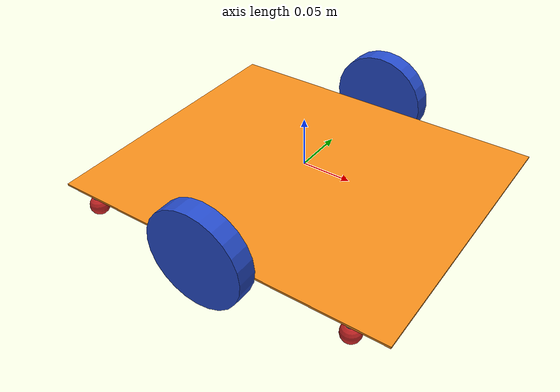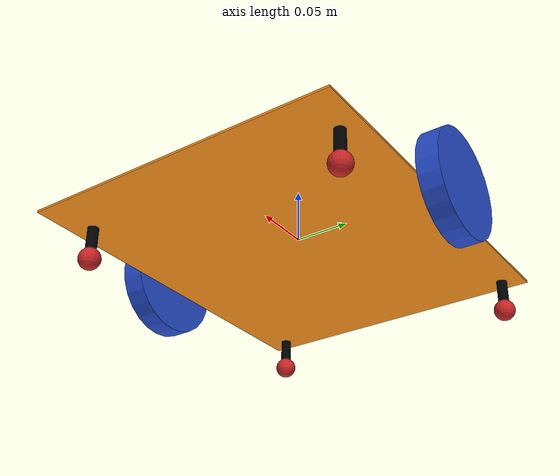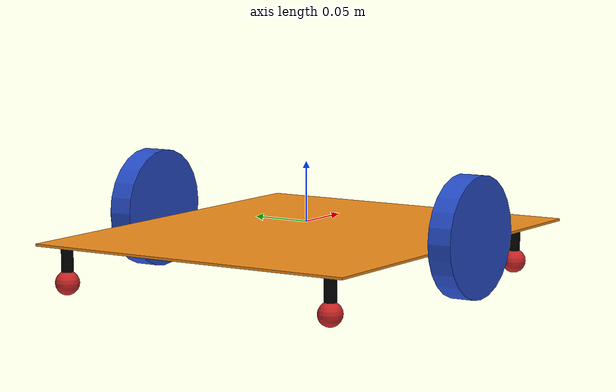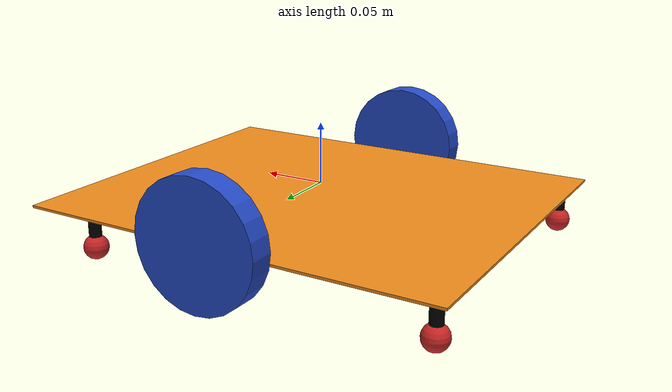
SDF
<sdf version='1.9'>
  <model name='gdgu_robot'>
    <link name='base_link'>
      <inertial>
        <pose>-0.007021276595744697 0 -0.015 0 0 0</pose>
        <mass>0.93999999999999995</mass>
        <inertia>
          <ixx>0.01045256666666667</ixx>
          <ixy>0</ixy>
          <ixz>-4.4999999999999739e-05</ixz>
          <iyy>0.01448122624113476</iyy>
          <iyz>0</iyz>
          <izz>0.024793592907801431</izz>
        </inertia>
      </inertial>
      <collision name='base_link_fixed_joint_lump__chassis_link_collision'>
        <pose>0 0 -0.009000000000000001 0 0 0</pose>
        <geometry>
          <box>
            <size>0.35 0.29 0.002</size>
          </box>
        </geometry>
        <surface>
          <contact>
            <ode/>
          </contact>
          <friction>
            <ode/>
          </friction>
        </surface>
      </collision>
      <collision name='base_link_fixed_joint_lump__caster_wheel1_link_collision_1'>
        <pose>-0.16 0.125 -0.04 0 0 0</pose>
        <geometry>
          <sphere>
            <radius>0.01</radius>
          </sphere>
        </geometry>
        <surface>
          <contact>
            <ode/>
          </contact>
          <friction>
            <ode>
              <mu>0.001</mu>
              <mu2>0.001</mu2>
            </ode>
          </friction>
        </surface>
      </collision>
      <collision name='base_link_fixed_joint_lump__connector_cw1_link_collision_2'>
        <pose>-0.16 0.125 -0.02 0 0 0</pose>
        <geometry>
          <cylinder>
            <length>0.021999999999999999</length>
            <radius>0.0050000000000000001</radius>
          </cylinder>
        </geometry>
      </collision>
      <collision name='base_link_fixed_joint_lump__caster_wheel2_link_collision_3'>
        <pose>-0.16 -0.125 -0.04 0 0 0</pose>
        <geometry>
          <sphere>
            <radius>0.01</radius>
          </sphere>
        </geometry>
        <surface>
          <contact>
            <ode/>
          </contact>
          <friction>
            <ode>
              <mu>0.001</mu>
              <mu2>0.001</mu2>
            </ode>
          </friction>
        </surface>
      </collision>
      <collision name='base_link_fixed_joint_lump__connector_cw2_link_collision_4'>
        <pose>-0.16 -0.125 -0.02 0 0 0</pose>
        <geometry>
          <cylinder>
            <length>0.021999999999999999</length>
            <radius>0.0050000000000000001</radius>
          </cylinder>
        </geometry>
      </collision>
      <collision name='base_link_fixed_joint_lump__caster_wheel3_link_collision_5'>
        <pose>0.13 0.125 -0.04 0 0 0</pose>
        <geometry>
          <sphere>
            <radius>0.01</radius>
          </sphere>
        </geometry>
        <surface>
          <contact>
            <ode/>
          </contact>
          <friction>
            <ode>
              <mu>0.001</mu>
              <mu2>0.001</mu2>
            </ode>
          </friction>
        </surface>
      </collision>
      <collision name='base_link_fixed_joint_lump__connector_cw3_link_collision_6'>
        <pose>0.13 0.125 -0.02 0 0 0</pose>
        <geometry>
          <cylinder>
            <length>0.021999999999999999</length>
            <radius>0.0050000000000000001</radius>
          </cylinder>
        </geometry>
      </collision>
      <collision name='base_link_fixed_joint_lump__caster_wheel4_link_collision_7'>
        <pose>0.13 -0.125 -0.04 0 0 0</pose>
        <geometry>
          <sphere>
            <radius>0.01</radius>
          </sphere>
        </geometry>
        <surface>
          <contact>
            <ode/>
          </contact>
          <friction>
            <ode>
              <mu>0.001</mu>
              <mu2>0.001</mu2>
            </ode>
          </friction>
        </surface>
      </collision>
      <collision name='base_link_fixed_joint_lump__connector_cw4_link_collision_8'>
        <pose>0.13 -0.125 -0.02 0 0 0</pose>
        <geometry>
          <cylinder>
            <length>0.021999999999999999</length>
            <radius>0.0050000000000000001</radius>
          </cylinder>
        </geometry>
      </collision>
      <visual name='base_link_fixed_joint_lump__chassis_link_visual'>
        <pose>0 0 -0.009000000000000001 0 0 0</pose>
        <geometry>
          <box>
            <size>0.35 0.29 0.002</size>
          </box>
        </geometry>
        <material>
          <script>
            <name>Gazebo/Orange</name>
            <uri>file://media/materials/scripts/gazebo.material</uri>
          </script>
          <diffuse>1 0.375 0.125 1</diffuse>
          <ambient>1 0.375 0.125 1</ambient>
        </material>
      </visual>
      <visual name='base_link_fixed_joint_lump__caster_wheel1_link_visual_1'>
        <pose>-0.16 0.125 -0.04 0 0 0</pose>
        <geometry>
          <sphere>
            <radius>0.01</radius>
          </sphere>
        </geometry>
        <material>
          <script>
            <name>Gazebo/Red</name>
            <uri>file://media/materials/scripts/gazebo.material</uri>
          </script>
          <diffuse>1 1 1 1</diffuse>
          <ambient>1 1 1 1</ambient>
        </material>
      </visual>
      <visual name='base_link_fixed_joint_lump__connector_cw1_link_visual_2'>
        <pose>-0.16 0.125 -0.02 0 0 0</pose>
        <geometry>
          <cylinder>
            <length>0.021999999999999999</length>
            <radius>0.0050000000000000001</radius>
          </cylinder>
        </geometry>
        <material>
          <diffuse>0 0 0 1</diffuse>
          <ambient>0 0 0 1</ambient>
        </material>
      </visual>
      <visual name='base_link_fixed_joint_lump__caster_wheel2_link_visual_3'>
        <pose>-0.16 -0.125 -0.04 0 0 0</pose>
        <geometry>
          <sphere>
            <radius>0.01</radius>
          </sphere>
        </geometry>
        <material>
          <script>
            <name>Gazebo/Red</name>
            <uri>file://media/materials/scripts/gazebo.material</uri>
          </script>
          <diffuse>1 1 1 1</diffuse>
          <ambient>1 1 1 1</ambient>
        </material>
      </visual>
      <visual name='base_link_fixed_joint_lump__connector_cw2_link_visual_4'>
        <pose>-0.16 -0.125 -0.02 0 0 0</pose>
        <geometry>
          <cylinder>
            <length>0.021999999999999999</length>
            <radius>0.0050000000000000001</radius>
          </cylinder>
        </geometry>
        <material>
          <diffuse>0 0 0 1</diffuse>
          <ambient>0 0 0 1</ambient>
        </material>
      </visual>
      <visual name='base_link_fixed_joint_lump__caster_wheel3_link_visual_5'>
        <pose>0.13 0.125 -0.04 0 0 0</pose>
        <geometry>
          <sphere>
            <radius>0.01</radius>
          </sphere>
        </geometry>
        <material>
          <script>
            <name>Gazebo/Red</name>
            <uri>file://media/materials/scripts/gazebo.material</uri>
          </script>
          <diffuse>1 1 1 1</diffuse>
          <ambient>1 1 1 1</ambient>
        </material>
      </visual>
      <visual name='base_link_fixed_joint_lump__connector_cw3_link_visual_6'>
        <pose>0.13 0.125 -0.02 0 0 0</pose>
        <geometry>
          <cylinder>
            <length>0.021999999999999999</length>
            <radius>0.0050000000000000001</radius>
          </cylinder>
        </geometry>
        <material>
          <diffuse>0 0 0 1</diffuse>
          <ambient>0 0 0 1</ambient>
        </material>
      </visual>
      <visual name='base_link_fixed_joint_lump__caster_wheel4_link_visual_7'>
        <pose>0.13 -0.125 -0.04 0 0 0</pose>
        <geometry>
          <sphere>
            <radius>0.01</radius>
          </sphere>
        </geometry>
        <material>
          <script>
            <name>Gazebo/Red</name>
            <uri>file://media/materials/scripts/gazebo.material</uri>
          </script>
          <diffuse>1 1 1 1</diffuse>
          <ambient>1 1 1 1</ambient>
        </material>
      </visual>
      <visual name='base_link_fixed_joint_lump__connector_cw4_link_visual_8'>
        <pose>0.13 -0.125 -0.02 0 0 0</pose>
        <geometry>
          <cylinder>
            <length>0.021999999999999999</length>
            <radius>0.0050000000000000001</radius>
          </cylinder>
        </geometry>
        <material>
          <diffuse>0 0 0 1</diffuse>
          <ambient>0 0 0 1</ambient>
        </material>
      </visual>
    </link>
    <joint name='left_wheel' type='revolute'>
      <pose relative_to='base_link'>0 0.155 0 -1.570796326794896 0 0</pose>
      <parent>base_link</parent>
      <child>lfw_link</child>
      <axis>
        <xyz>0 0 1</xyz>
        <limit>
          <lower>-10000000000000000</lower>
          <upper>10000000000000000</upper>
        </limit>
        <dynamics>
          <spring_reference>0</spring_reference>
          <spring_stiffness>0</spring_stiffness>
        </dynamics>
      </axis>
    </joint>
    <link name='lfw_link'>
      <pose relative_to='left_wheel'>0 0 0 0 0 0</pose>
      <inertial>
        <pose>0 0 0 0 0 0</pose>
        <mass>0.5</mass>
        <inertia>
          <ixx>0.00032916666666666668</ixx>
          <ixy>0</ixy>
          <ixz>0</ixz>
          <iyy>0.00032916666666666668</iyy>
          <iyz>0</iyz>
          <izz>0.00062500000000000012</izz>
        </inertia>
      </inertial>
      <collision name='lfw_link_collision'>
        <pose>0 0 0 0 0 0</pose>
        <geometry>
          <sphere>
            <radius>0.050000000000000003</radius>
          </sphere>
        </geometry>
        <surface>
          <contact>
            <ode/>
          </contact>
          <friction>
            <ode/>
          </friction>
        </surface>
      </collision>
      <visual name='lfw_link_visual'>
        <pose>0 0 0 0 0 0</pose>
        <geometry>
          <cylinder>
            <length>0.02</length>
            <radius>0.050000000000000003</radius>
          </cylinder>
        </geometry>
        <material>
          <script>
            <name>Gazebo/Blue</name>
            <uri>file://media/materials/scripts/gazebo.material</uri>
          </script>
          <diffuse>0.25 0.25 1 1</diffuse>
          <ambient>0.25 0.25 1 1</ambient>
        </material>
      </visual>
    </link>
    <joint name='right_wheel' type='revolute'>
      <pose relative_to='base_link'>0 -0.155 0 1.570796326794896 0 0</pose>
      <parent>base_link</parent>
      <child>rfw_link</child>
      <axis>
        <xyz>0 0 -1</xyz>
        <limit>
          <lower>-10000000000000000</lower>
          <upper>10000000000000000</upper>
        </limit>
        <dynamics>
          <spring_reference>0</spring_reference>
          <spring_stiffness>0</spring_stiffness>
        </dynamics>
      </axis>
    </joint>
    <link name='rfw_link'>
      <pose relative_to='right_wheel'>0 0 0 0 0 0</pose>
      <inertial>
        <pose>0 0 0 0 0 0</pose>
        <mass>0.5</mass>
        <inertia>
          <ixx>0.00032916666666666668</ixx>
          <ixy>0</ixy>
          <ixz>0</ixz>
          <iyy>0.00032916666666666668</iyy>
          <iyz>0</iyz>
          <izz>0.00062500000000000012</izz>
        </inertia>
      </inertial>
      <collision name='rfw_link_collision'>
        <pose>0 0 0 0 0 0</pose>
        <geometry>
          <sphere>
            <radius>0.050000000000000003</radius>
          </sphere>
        </geometry>
        <surface>
          <contact>
            <ode/>
          </contact>
          <friction>
            <ode/>
          </friction>
        </surface>
      </collision>
      <visual name='rfw_link_visual'>
        <pose>0 0 0 0 0 0</pose>
        <geometry>
          <cylinder>
            <length>0.02</length>
            <radius>0.050000000000000003</radius>
          </cylinder>
        </geometry>
        <material>
          <script>
            <name>Gazebo/Blue</name>
            <uri>file://media/materials/scripts/gazebo.material</uri>
          </script>
          <diffuse>0.25 0.25 1 1</diffuse>
          <ambient>0.25 0.25 1 1</ambient>
        </material>
      </visual>
    </link>
    <plugin name='gz::sim::systems::DiffDrive' filename='gz-sim-diff-drive-system'>
      <left_joint>left_wheel</left_joint>
      <right_joint>right_wheel</right_joint>
      <wheel_separation>0.31</wheel_separation>
      <wheel_radius>0.05</wheel_radius>
      <odom_publish_frequency>100</odom_publish_frequency>
      <topic>cmd_vel</topic>
      <odom_topic>odom</odom_topic>
      <frame_id>odom</frame_id>
      <child_frame_id>base_link</child_frame_id>
      <max_linear_accelaration>1</max_linear_accelaration>
    </plugin>
    <plugin name='gz::sim::systems::JointStatePublisher' filename='gz-sim-joint-state-publisher-system'>
      <topic>joint_states</topic>
      <joint_name>left_wheel</joint_name>
      <joint_name>right_wheel</joint_name>
      <joint_name>rotor_joint</joint_name>
    </plugin>
    <frame name='base_footprint_joint' attached_to='base_link'>
      <pose>0 0 0 0 -0 0</pose>
    </frame>
    <frame name='base_footprint' attached_to='base_footprint_joint'/>
    <frame name='connector_cw1_joint' attached_to='caster_wheel1_link'>
      <pose>0 0 0.02 0 -0 0</pose>
    </frame>
    <frame name='connector_cw1_link' attached_to='connector_cw1_joint'/>
    <frame name='caster_wheel1_joint' attached_to='chassis_link'>
      <pose>0.015 0.125 -0.03 0 -0 0</pose>
    </frame>
    <frame name='caster_wheel1_link' attached_to='caster_wheel1_joint'/>
    <frame name='connector_cw2_joint' attached_to='caster_wheel2_link'>
      <pose>0 0 0.02 0 -0 0</pose>
    </frame>
    <frame name='connector_cw2_link' attached_to='connector_cw2_joint'/>
    <frame name='caster_wheel2_joint' attached_to='chassis_link'>
      <pose>0.015 -0.125 -0.03 0 -0 0</pose>
    </frame>
    <frame name='caster_wheel2_link' attached_to='caster_wheel2_joint'/>
    <frame name='connector_cw3_joint' attached_to='caster_wheel3_link'>
      <pose>0 0 0.02 0 -0 0</pose>
    </frame>
    <frame name='connector_cw3_link' attached_to='connector_cw3_joint'/>
    <frame name='caster_wheel3_joint' attached_to='chassis_link'>
      <pose>0.305 0.125 -0.03 0 -0 0</pose>
    </frame>
    <frame name='caster_wheel3_link' attached_to='caster_wheel3_joint'/>
    <frame name='connector_cw4_joint' attached_to='caster_wheel4_link'>
      <pose>0 0 0.02 0 -0 0</pose>
    </frame>
    <frame name='connector_cw4_link' attached_to='connector_cw4_joint'/>
    <frame name='caster_wheel4_joint' attached_to='chassis_link'>
      <pose>0.305 -0.125 -0.03 0 -0 0</pose>
    </frame>
    <frame name='caster_wheel4_link' attached_to='caster_wheel4_joint'/>
    <frame name='chassis_joint' attached_to='base_link'>
      <pose>-0.175 0 -0.01 0 -0 0</pose>
    </frame>
    <frame name='chassis_link' attached_to='chassis_joint'/>
  </model>
</sdf>
